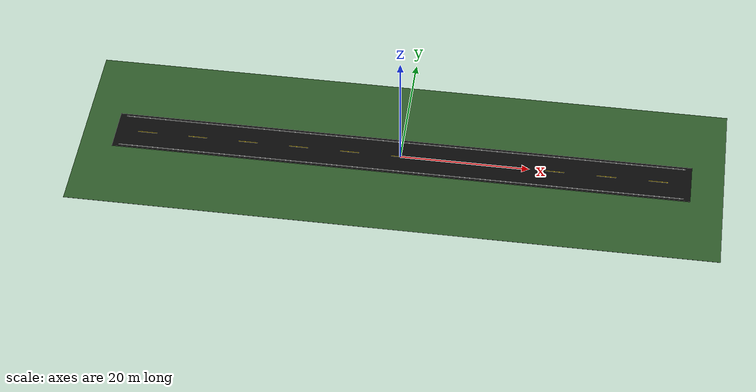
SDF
<?xml version="1.0" ?>
<sdf version="1.6">
  <world name="straight_road_world">
    <physics name="default_physics" type="ode">
      <max_step_size>0.001</max_step_size>
      <real_time_update_rate>1000</real_time_update_rate>
      <real_time_factor>1.0</real_time_factor>
    </physics>

    <scene>
      <ambient>0.45 0.45 0.45 1</ambient>
      <background>0.7 0.8 1.0 1</background>
      <shadows>true</shadows>
    </scene>

    <include>
      <uri>model://sun</uri>
    </include>

    <model name="grass_ground">
      <static>true</static>
      <link name="ground_link">
        <collision name="ground_collision">
          <geometry>
            <box>
              <size>100 30 0.02</size>
            </box>
          </geometry>
        </collision>
        <visual name="ground_visual">
          <geometry>
            <box>
              <size>100 30 0.02</size>
            </box>
          </geometry>
          <material>
            <ambient>0.18 0.35 0.16 1</ambient>
            <diffuse>0.18 0.35 0.16 1</diffuse>
          </material>
        </visual>
      </link>
      <pose>0 0 -0.02 0 0 0</pose>
    </model>

    <model name="straight_asphalt_road">
      <static>true</static>
      <link name="road_link">
        <collision name="road_collision">
          <geometry>
            <box>
              <size>90 7 0.04</size>
            </box>
          </geometry>
        </collision>
        <visual name="road_visual">
          <geometry>
            <box>
              <size>90 7 0.04</size>
            </box>
          </geometry>
          <material>
            <ambient>0.025 0.025 0.025 1</ambient>
            <diffuse>0.035 0.035 0.035 1</diffuse>
            <specular>0.01 0.01 0.01 1</specular>
          </material>
        </visual>
      </link>
      <pose>0 0 0.01 0 0 0</pose>
    </model>

    <model name="white_edge_lines">
      <static>true</static>
      <link name="edge_lines_link">
        <visual name="left_edge_line">
          <pose>0 3.05 0.035 0 0 0</pose>
          <geometry>
            <box>
              <size>88 0.12 0.01</size>
            </box>
          </geometry>
          <material>
            <ambient>1 1 1 1</ambient>
            <diffuse>1 1 1 1</diffuse>
          </material>
        </visual>
        <visual name="right_edge_line">
          <pose>0 -3.05 0.035 0 0 0</pose>
          <geometry>
            <box>
              <size>88 0.12 0.01</size>
            </box>
          </geometry>
          <material>
            <ambient>1 1 1 1</ambient>
            <diffuse>1 1 1 1</diffuse>
          </material>
        </visual>
      </link>
    </model>

    <model name="dashed_yellow_center_line">
      <static>true</static>
      <link name="center_line_link">
        <visual name="dash_00"><pose>-40 0 0.04 0 0 0</pose><geometry><box><size>3 0.12 0.012</size></box></geometry><material><ambient>1 0.85 0.05 1</ambient><diffuse>1 0.85 0.05 1</diffuse></material></visual>
        <visual name="dash_01"><pose>-32 0 0.04 0 0 0</pose><geometry><box><size>3 0.12 0.012</size></box></geometry><material><ambient>1 0.85 0.05 1</ambient><diffuse>1 0.85 0.05 1</diffuse></material></visual>
        <visual name="dash_02"><pose>-24 0 0.04 0 0 0</pose><geometry><box><size>3 0.12 0.012</size></box></geometry><material><ambient>1 0.85 0.05 1</ambient><diffuse>1 0.85 0.05 1</diffuse></material></visual>
        <visual name="dash_03"><pose>-16 0 0.04 0 0 0</pose><geometry><box><size>3 0.12 0.012</size></box></geometry><material><ambient>1 0.85 0.05 1</ambient><diffuse>1 0.85 0.05 1</diffuse></material></visual>
        <visual name="dash_04"><pose>-8 0 0.04 0 0 0</pose><geometry><box><size>3 0.12 0.012</size></box></geometry><material><ambient>1 0.85 0.05 1</ambient><diffuse>1 0.85 0.05 1</diffuse></material></visual>
        <visual name="dash_05"><pose>0 0 0.04 0 0 0</pose><geometry><box><size>3 0.12 0.012</size></box></geometry><material><ambient>1 0.85 0.05 1</ambient><diffuse>1 0.85 0.05 1</diffuse></material></visual>
        <visual name="dash_06"><pose>8 0 0.04 0 0 0</pose><geometry><box><size>3 0.12 0.012</size></box></geometry><material><ambient>1 0.85 0.05 1</ambient><diffuse>1 0.85 0.05 1</diffuse></material></visual>
        <visual name="dash_07"><pose>16 0 0.04 0 0 0</pose><geometry><box><size>3 0.12 0.012</size></box></geometry><material><ambient>1 0.85 0.05 1</ambient><diffuse>1 0.85 0.05 1</diffuse></material></visual>
        <visual name="dash_08"><pose>24 0 0.04 0 0 0</pose><geometry><box><size>3 0.12 0.012</size></box></geometry><material><ambient>1 0.85 0.05 1</ambient><diffuse>1 0.85 0.05 1</diffuse></material></visual>
        <visual name="dash_09"><pose>32 0 0.04 0 0 0</pose><geometry><box><size>3 0.12 0.012</size></box></geometry><material><ambient>1 0.85 0.05 1</ambient><diffuse>1 0.85 0.05 1</diffuse></material></visual>
        <visual name="dash_10"><pose>40 0 0.04 0 0 0</pose><geometry><box><size>3 0.12 0.012</size></box></geometry><material><ambient>1 0.85 0.05 1</ambient><diffuse>1 0.85 0.05 1</diffuse></material></visual>
      </link>
    </model>
  </world>
</sdf>
